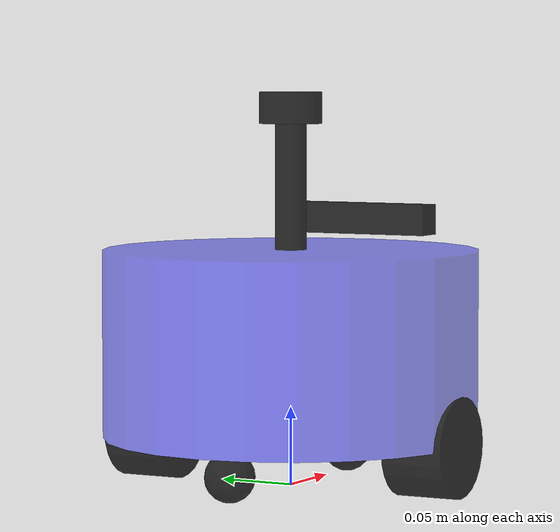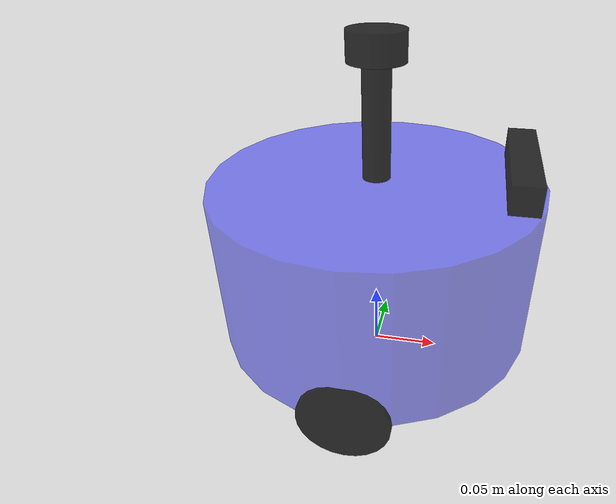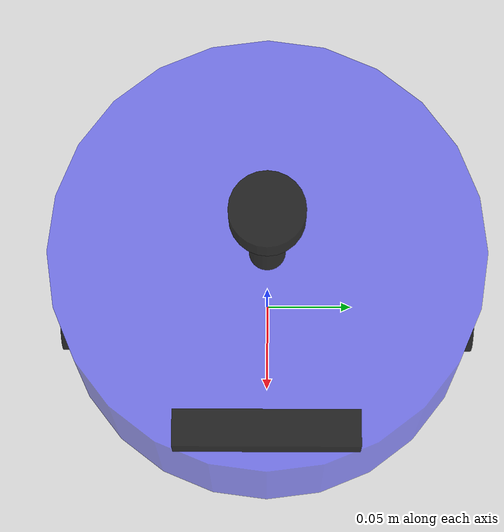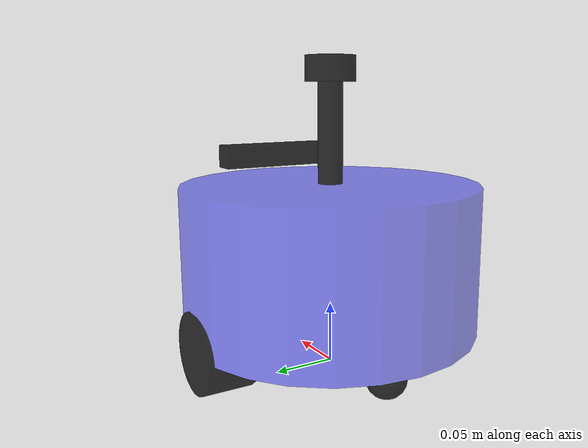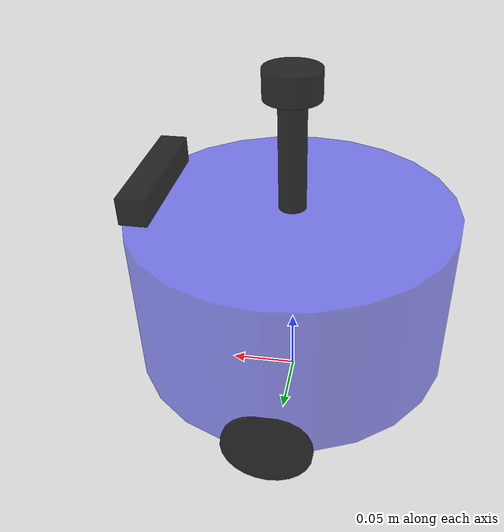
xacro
<?xml version="1.0"?>
<robot xmlns:xacro="http://www.ros.org/wiki/xacro" name="diffdrive_car">
    <!-- 文件引入 -->

    <xacro:include filename="$(find diffdrive_car_gz)/urdf/base.urdf.xacro" />
    <!-- 传感器组件 -->
    <xacro:include filename="$(find diffdrive_car_gz)/urdf/sensors/imu.urdf.xacro" />
    <xacro:include filename="$(find diffdrive_car_gz)/urdf/sensors/laser.urdf.xacro" />
    <xacro:include filename="$(find diffdrive_car_gz)/urdf/sensors/camera.urdf.xacro" />
     <!-- 执行器组件 -->
    <xacro:include filename="$(find diffdrive_car_gz)/urdf/actuator/wheel.urdf.xacro" />
    <xacro:include filename="$(find diffdrive_car_gz)/urdf/actuator/caster.urdf.xacro" />

    <!-- 宏调用实现 -->

    <xacro:base_xacro length="0.12" radius="0.1" />
    <!-- 传感器 -->
    <xacro:imu_xacro xyz="0 0 0.02" />
    <xacro:laser_xacro xyz="0 0 0.10" />
    <xacro:camera_xacro xyz="0.10 0 0.075" />
    <!-- 执行器主动轮+从动轮 -->
    <xacro:wheel_xacro wheel_name="left" xyz="0 0.10 -0.06" />
    <xacro:wheel_xacro wheel_name="right" xyz="0 -0.10 -0.06" />
    <xacro:caster_xacro caster_name="front" xyz="0.08 0.0 -0.076" />
    <xacro:caster_xacro caster_name="back" xyz="-0.08 0.0 -0.076" />
    <!-- Gazebo 插件 -->
    <xacro:include filename="$(find diffdrive_car_gz)/urdf/plugins/gazebo_control_plugin.xacro" />
    <xacro:include filename="$(find diffdrive_car_gz)/urdf/robot.ros2_control.xacro" />
    <!-- gazebo_control_plugin (gazebo 原生插件) 和 gz_ros_control 二选一 -->
    <!-- 选择 gz_ros_control 后，就不再需要 gz_bridge（joint_state & cmd_vel & odom 部分），记得修改 launch 脚本和 gz_bridge.yaml。
        原因参见 ros2_controller.yaml 和 robot.ros2_control.xacro ros::remapping 的配置 -->
    <xacro:vbot_ros2_control />
    <xacro:include filename="$(find diffdrive_car_gz)/urdf/plugins/gazebo_sensor_plugin.xacro" />
    <xacro:gazebo_sensor_plugin />
</robot>

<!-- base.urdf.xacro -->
<robot xmlns:xacro="http://www.ros.org/wiki/xacro">
   <xacro:include filename="$(find diffdrive_car_gz)/urdf/common_inertia.xacro" />
    <xacro:macro name="base_xacro" params="length radius">

    <!-- 虚拟部件：让轮胎落地 -->
     <link name="base_footprint" />

        <!-- 虚拟部件与主体紧耦合 -->
        <joint name="base_joint" type="fixed">
            <parent link="base_footprint" />
            <child link="base_link" />
            <!-- 轮子半径 0.032，另外 0.001 确保紧贴 -->
            <origin xyz="0.0 0.0 ${length/2.0+0.032-0.001}" rpy="0 0 0" />
        </joint>

        <link name="base_link">
            <visual>
                <origin xyz="0 0 0.0" rpy="0 0 0" />
                <geometry>
                    <cylinder length="${length}" radius="${length}" />
                </geometry>
                <material name="blue">
                    <color rgba="0.1 0.1 1.0 0.5"/>
                </material>
            </visual>

            <!-- 碰撞属性 -->
            <collision>
                <origin xyz="0 0 0.0" rpy="0 0 0" />
                <geometry>
                    <cylinder length="${length}" radius="${length}" />
                </geometry>
                <material name="red">
                    <color rgba="1.0 0.1 0.1 0.5"/>
                </material>
            </collision>
            <xacro:cylinder_inertia m="1.0" r="${radius}" h="${length}"/>
        </link>

    </xacro:macro>

</robot>

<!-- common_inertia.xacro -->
<robot xmlns:xacro="http://ros.org/wiki/xacro">

    <!-- 转动惯量工具文件 -->

    <xacro:macro name="box_inertia" params="m w h d">
        <inertial>
            <mass value="${m}" />
            <inertia ixx="${(m/12) * (h*h + d*d)}" ixy="0.0" ixz="0.0" iyy="${(m/12) * (w*w + d*d)}" iyz="0.0" izz="${(m/12) * (w*w + h*h)}" />
        </inertial>
    </xacro:macro>

    <xacro:macro name="cylinder_inertia" params="m r h">
        <inertial>
            <mass value="${m}" />
            <inertia ixx="${(m/12) * (3*r*r + h*h)}" ixy="0" ixz="0" iyy="${(m/12) * (3*r*r + h*h)}" iyz="0" izz="${(m/2) * (r*r)}" />
        </inertial>
    </xacro:macro>

    <xacro:macro name="sphere_inertia" params="m r">
        <inertial>
            <mass value="${m}" />
            <inertia ixx="${(2/5) * m * (r*r)}" ixy="0.0" ixz="0.0" iyy="${(2/5) * m * (r*r)}" iyz="0.0" izz="${(2/5) * m * (r*r)}" />
        </inertial>
    </xacro:macro>

</robot>

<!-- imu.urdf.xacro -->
<robot xmlns:xacro="http://www.ros.org/wiki/xacro">
   <xacro:include filename="$(find diffdrive_car_gz)/urdf/common_inertia.xacro" />
    <xacro:macro name="imu_xacro" params="xyz">
        <link name="imu_link">
            <visual>
                <origin xyz="0 0 00" rpy="0 0 0" />
                <geometry>
                    <box size="0.02 0.02 0.02" />
                </geometry>
                <material name="black">
                    <color rgba="0 0 0 0.8" />
                </material>
            </visual>
            <collision>
                <origin xyz="0 0 00" rpy="0 0 0" />
                <geometry>
                    <box size="0.02 0.02 0.02" />
                </geometry>
                <material name="black">
                    <color rgba="0 0 0 0.8" />
                </material>
            </collision>
            <xacro:box_inertia m="0.01" w="0.02" d="0.02" h="0.02"/>
        </link>

        <joint name="imu_joint" type="fixed">
            <parent link="base_link" />
            <child link="imu_link" />
            <origin xyz="${xyz}" />
        </joint>
    </xacro:macro>
</robot>

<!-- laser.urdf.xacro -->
<robot xmlns:xacro="http://www.ros.org/wiki/xacro">
   <xacro:include filename="$(find diffdrive_car_gz)/urdf/common_inertia.xacro" />
    <xacro:macro name="laser_xacro" params="xyz">

        <!-- 给 Gazebo 虚拟环境设置的属性 -->
        <gazebo reference="laser_cylinder_link">
            <material>Gazebo/Black</material>
        </gazebo>
        <gazebo reference="laser_link">
            <material>Gazebo/Black</material>
        </gazebo>

        <!-- ============雷达支撑杆================ -->
        <link name="laser_cylinder_link">
            <visual>
                <origin xyz="0 0 0" rpy="0 0 0" />
                <geometry>
                    <cylinder length="0.10" radius="0.01" />
                </geometry>
                <material name="black">
                    <color rgba="0.0 0.0 0.0 0.8" />
                </material>
            </visual>
            <collision>
                <origin xyz="0 0 0" rpy="0 0 0" />
                <geometry>
                    <cylinder length="0.10" radius="0.01" />
                </geometry>
                <material name="black">
                    <color rgba="0.0 0.0 0.0 0.8" />
                </material>
            </collision>
            <xacro:cylinder_inertia m="0.01" r="0.01" h="0.10" />
        </link>

        <joint name="laser_cylinder_joint" type="fixed">
            <parent link="base_link" />
            <child link="laser_cylinder_link" />
            <origin xyz="${xyz}" />
        </joint>
        <!-- ============雷达================ -->
        <link name="laser_link">
            <visual>
                <origin xyz="0 0 0" rpy="0 0 0" />
                <geometry>
                    <cylinder length="0.02" radius="0.02" />
                </geometry>
                <material name="black">
                    <color rgba="0.0 0.0 0.0 0.8" />
                </material>
            </visual>
            <collision>
                <origin xyz="0 0 0" rpy="0 0 0" />
                <geometry>
                    <cylinder length="0.02" radius="0.02" />
                </geometry>
                <material name="black">
                    <color rgba="0.0 0.0 0.0 0.8" />
                </material>
            </collision>
            <xacro:cylinder_inertia m="0.03" r="0.02" h="0.02" />
        </link>

        <joint name="laser_joint" type="fixed">
            <parent link="laser_cylinder_link" />
            <child link="laser_link" />
            <origin xyz="0 0 0.05" />
        </joint>

    </xacro:macro>

</robot>

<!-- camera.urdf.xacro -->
<robot xmlns:xacro="http://www.ros.org/wiki/xacro">
   <xacro:include filename="$(find diffdrive_car_gz)/urdf/common_inertia.xacro" />
    <xacro:macro name="camera_xacro" params="xyz">
        <!-- ============相机模块================ -->
        <link name="camera_link">
            <visual>
                <origin xyz="0 0 0.0" rpy="0 0 0" />
                <geometry>
                    <box size="0.02 0.10 0.02" />
                </geometry>
                <material name="black">
                    <color rgba="0.0 0.0 0.0 0.8"/>
                </material>
            </visual>
            <collision>
                <origin xyz="0 0 0.0" rpy="0 0 0" />
                <geometry>
                    <box size="0.02 0.10 0.02" />
                </geometry>
                <material name="black">
                    <color rgba="0.0 0.0 0.0 0.8"/>
                </material>
            </collision>
            <xacro:box_inertia m="0.01" w="0.02" h="0.10" d="0.02" />
        </link>

        <!-- 虚拟光学相机与虚拟关节，目的：将相机的 z 轴朝向机器人正前方 -->
        <link name="camera_optical_link"></link>
        <joint name="camera_optical_joint" type="fixed">
            <parent link="camera_link" />
            <child link="camera_optical_link" />
            <origin xyz="0 0 0" rpy="${-pi/2} 0 ${-pi/2}" />
        </joint>

        <joint name="camera_joint" type="fixed">
            <parent link="base_link" />
            <child link="camera_link" />
            <origin xyz="${xyz}" />
        </joint>
    </xacro:macro>

</robot>

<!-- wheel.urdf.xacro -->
<robot xmlns:xacro="http://www.ros.org/wiki/xacro">
   <xacro:include filename="$(find diffdrive_car_gz)/urdf/common_inertia.xacro" />
    <xacro:macro name="wheel_xacro" params="wheel_name xyz">
        <link name="${wheel_name}_wheel_link">
            <visual>
                <origin xyz="0 0 0" rpy="1.57079 0 0" />
                <geometry>
                    <cylinder length="0.04" radius="0.032" />
                </geometry>
                <material name="black">
                    <color rgba="0.0 0.0 0.0 0.8"/>
                </material>
            </visual>
            <collision>
                <origin xyz="0 0 0" rpy="1.57079 0 0" />
                <geometry>
                    <cylinder length="0.04" radius="0.032" />
                </geometry>
                <material name="black">
                    <color rgba="0.0 0.0 0.0 0.8"/>
                </material>
            </collision>
            <xacro:cylinder_inertia m="0.1" h="0.04" r="0.032"/>
        </link>

        <!-- 为轮胎配置 Gazebo 虚拟环境中的摩擦力属性 -->
        <gazebo reference="${wheel_name}_wheel_link">
            <!-- 切向动摩擦因数 -->
            <mu1 value="20.0" />
            <!-- 法向动摩擦因数 -->
            <mu2 value="20.0" />
            <!-- 刚度系数 -->
            <kp value="1000000000.0" />
            <!-- 阻尼系数 -->
            <kd value="1.0" />
        </gazebo>

        <joint name="${wheel_name}_wheel_joint" type="continuous">
            <parent link="base_link" />
            <child link="${wheel_name}_wheel_link" />
            <origin xyz="${xyz}" />
            <!-- 表示轮子会绕 y 轴旋转 -->
            <axis xyz="0 1 0" />
        </joint>
    </xacro:macro>
</robot>

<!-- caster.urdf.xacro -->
<robot xmlns:xacro="http://www.ros.org/wiki/xacro">
   <xacro:include filename="$(find diffdrive_car_gz)/urdf/common_inertia.xacro" />
    <xacro:macro name="caster_xacro" params="caster_name xyz">
        <link name="${caster_name}_caster_link">
            <visual>
                <origin xyz="0 0 0" rpy="0 0 0" />
                <geometry>
                    <sphere radius="0.016" />
                </geometry>
                <material name="black">
                    <color rgba="0.0 0.0 0.0 0.8"/>
                </material>
            </visual>
            <collision>
                <origin xyz="0 0 0" rpy="0 0 0" />
                <geometry>
                    <sphere radius="0.016" />
                </geometry>
                <material name="black">
                    <color rgba="0.0 0.0 0.0 0.8"/>
                </material>
            </collision>
            <xacro:sphere_inertia m="0.01" r="0.016" />
        </link>
        <gazebo reference="${caster_name}_caster_link">
            <mu1 value="0.0" />
            <mu2 value="0.0" />
            <kp value="1000000000.0" />
            <kd value="1.0" />
        </gazebo>

        <joint name="${caster_name}_caster_joint" type="fixed">
            <parent link="base_link" />
            <child link="${caster_name}_caster_link" />
            <origin xyz="${xyz}" />
            <axis xyz="0 0 0" />
        </joint>

    </xacro:macro>
</robot>
